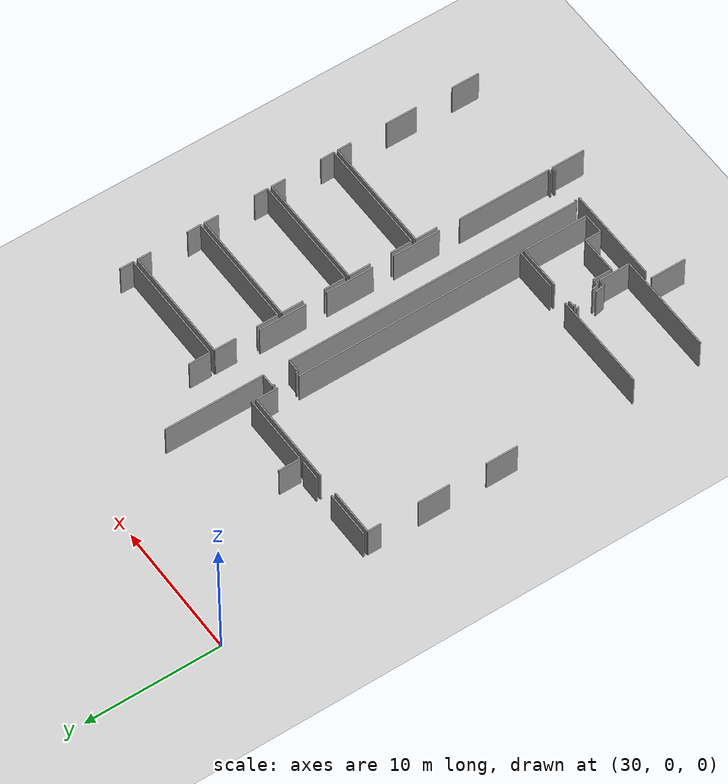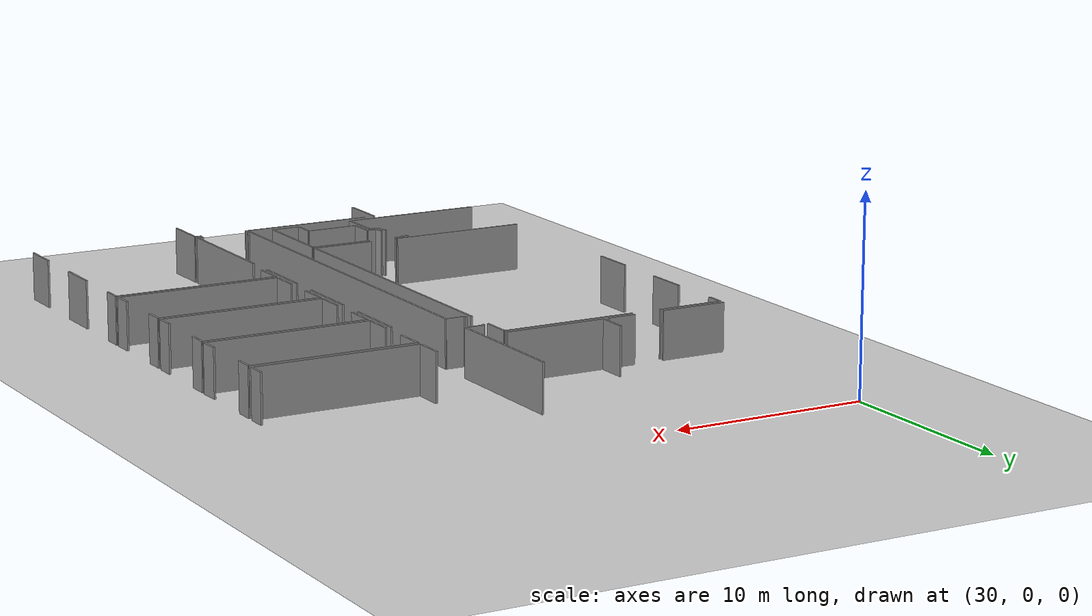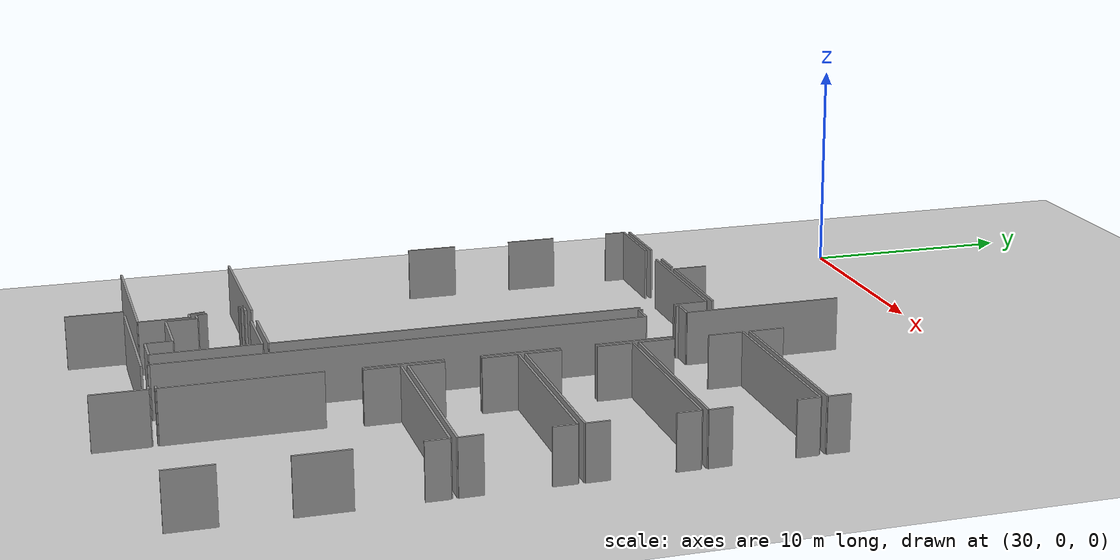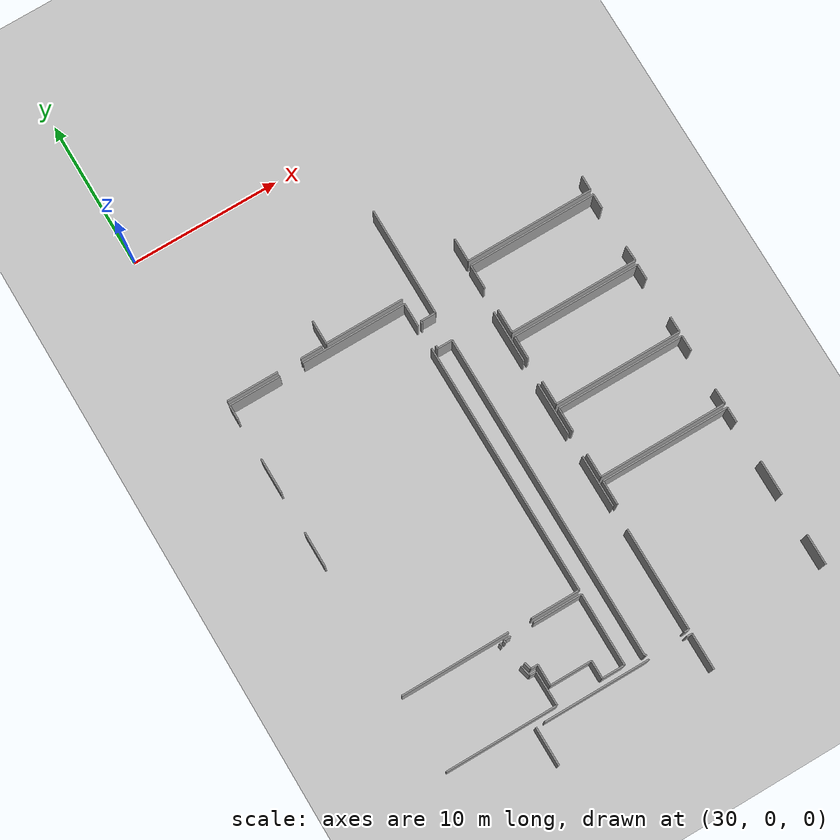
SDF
<sdf version="1.6">
 <world name="default">
  <model name="ground_plane">
   <static>1</static>
   <link name="link">
    <collision name="collision">
     <geometry><plane><normal>0 0 1</normal><size>100 100</size></plane></geometry>
     <surface><friction><ode><mu>100</mu><mu2>50</mu2></ode></friction></surface>
    </collision>
    <visual name="visual">
     <cast_shadows>0</cast_shadows>
     <geometry><plane><normal>0 0 1</normal><size>100 100</size></plane></geometry>
     <material>
      <script><uri>file://media/materials/scripts/gazebo.material</uri><name>Gazebo/Grey</name></script>
     </material>
    </visual>
   </link>
  </model>
  <model name="50025631">
   <static>1</static>
   <link name="Wall_208">
    <collision name="Wall_208_Collision">
     <geometry><box><size>0.318530795755 0.1 2.5</size></box></geometry>
     <pose>0.159265397878 0 1.25 0 0 0</pose>
    </collision>
    <visual name="Wall_208_Visual">
     <pose>0.159265397878 0 1.25 0 0 0</pose>
     <geometry><box><size>0.318530795755 0.1 2.5</size></box></geometry>
     <material>
      <script><uri>file://media/materials/scripts/gazebo.material</uri><name>Gazebo/Grey</name></script>
      <ambient>1 1 1 1</ambient>
     </material>
    </visual>
    <pose>102.865126085 -85.0863703619 0 0 0 3.14159265359</pose>
   </link>
   <link name="Wall_209">
    <collision name="Wall_209_Collision">
     <geometry><box><size>0.131197094105 0.1 2.5</size></box></geometry>
     <pose>0.0655985470525 0 1.25 0 0 0</pose>
    </collision>
    <visual name="Wall_209_Visual">
     <pose>0.0655985470525 0 1.25 0 0 0</pose>
     <geometry><box><size>0.131197094105 0.1 2.5</size></box></geometry>
     <material>
      <script><uri>file://media/materials/scripts/gazebo.material</uri><name>Gazebo/Grey</name></script>
      <ambient>1 1 1 1</ambient>
     </material>
    </visual>
    <pose>99.957072006 -85.0863703619 0 0 0 3.14159265359</pose>
   </link>
   <link name="Wall_210">
    <collision name="Wall_210_Collision">
     <geometry><box><size>22.0127894941 0.1 2.5</size></box></geometry>
     <pose>11.006394747 0 1.25 0 0 0</pose>
    </collision>
    <visual name="Wall_210_Visual">
     <pose>11.006394747 0 1.25 0 0 0</pose>
     <geometry><box><size>22.0127894941 0.1 2.5</size></box></geometry>
     <material>
      <script><uri>file://media/materials/scripts/gazebo.material</uri><name>Gazebo/Grey</name></script>
      <ambient>1 1 1 1</ambient>
     </material>
    </visual>
    <pose>99.8258749119 -85.0863703619 0 0 0 1.57079632679</pose>
   </link>
   <link name="Wall_211">
    <collision name="Wall_211_Collision">
     <geometry><box><size>1.01033192992 0.1 2.5</size></box></geometry>
     <pose>0.505165964959 0 1.25 0 0 0</pose>
    </collision>
    <visual name="Wall_211_Visual">
     <pose>0.505165964959 0 1.25 0 0 0</pose>
     <geometry><box><size>1.01033192992 0.1 2.5</size></box></geometry>
     <material>
      <script><uri>file://media/materials/scripts/gazebo.material</uri><name>Gazebo/Grey</name></script>
      <ambient>1 1 1 1</ambient>
     </material>
    </visual>
    <pose>99.8258749119 -63.0735808678 0 0 0 3.14159265359</pose>
   </link>
   <link name="Wall_212">
    <collision name="Wall_212_Collision">
     <geometry><box><size>0.192794955326 0.1 2.5</size></box></geometry>
     <pose>0.0963974776628 0 1.25 0 0 0</pose>
    </collision>
    <visual name="Wall_212_Visual">
     <pose>0.0963974776628 0 1.25 0 0 0</pose>
     <geometry><box><size>0.192794955326 0.1 2.5</size></box></geometry>
     <material>
      <script><uri>file://media/materials/scripts/gazebo.material</uri><name>Gazebo/Grey</name></script>
      <ambient>1 1 1 1</ambient>
     </material>
    </visual>
    <pose>98.815542982 -63.0735808678 0 0 0 1.57079632679</pose>
   </link>
   <link name="Wall_213">
    <collision name="Wall_213_Collision">
     <geometry><box><size>0.183142506969 0.1 2.5</size></box></geometry>
     <pose>0.0915712534847 0 1.25 0 0 0</pose>
    </collision>
    <visual name="Wall_213_Visual">
     <pose>0.0915712534847 0 1.25 0 0 0</pose>
     <geometry><box><size>0.183142506969 0.1 2.5</size></box></geometry>
     <material>
      <script><uri>file://media/materials/scripts/gazebo.material</uri><name>Gazebo/Grey</name></script>
      <ambient>1 1 1 1</ambient>
     </material>
    </visual>
    <pose>98.815542982 -61.302991624 0 0 0 1.57079632679</pose>
   </link>
   <link name="Wall_214">
    <collision name="Wall_214_Collision">
     <geometry><box><size>1.00956989452 0.1 2.5</size></box></geometry>
     <pose>0.504784947261 0 1.25 0 0 0</pose>
    </collision>
    <visual name="Wall_214_Visual">
     <pose>0.504784947261 0 1.25 0 0 0</pose>
     <geometry><box><size>1.00956989452 0.1 2.5</size></box></geometry>
     <material>
      <script><uri>file://media/materials/scripts/gazebo.material</uri><name>Gazebo/Grey</name></script>
      <ambient>1 1 1 1</ambient>
     </material>
    </visual>
    <pose>98.815542982 -61.119849117 0 0 0 0.0</pose>
   </link>
   <link name="Wall_215">
    <collision name="Wall_215_Collision">
     <geometry><box><size>7.33725781563 0.1 2.5</size></box></geometry>
     <pose>3.66862890781 0 1.25 0 0 0</pose>
    </collision>
    <visual name="Wall_215_Visual">
     <pose>3.66862890781 0 1.25 0 0 0</pose>
     <geometry><box><size>7.33725781563 0.1 2.5</size></box></geometry>
     <material>
      <script><uri>file://media/materials/scripts/gazebo.material</uri><name>Gazebo/Grey</name></script>
      <ambient>1 1 1 1</ambient>
     </material>
    </visual>
    <pose>99.8251128765 -61.119849117 0 0 0 1.57079632679</pose>
   </link>
   <link name="Wall_218">
    <collision name="Wall_218_Collision">
     <geometry><box><size>3.51196713087 0.1 2.5</size></box></geometry>
     <pose>1.75598356544 0 1.25 0 0 0</pose>
    </collision>
    <visual name="Wall_218_Visual">
     <pose>1.75598356544 0 1.25 0 0 0</pose>
     <geometry><box><size>3.51196713087 0.1 2.5</size></box></geometry>
     <material>
      <script><uri>file://media/materials/scripts/gazebo.material</uri><name>Gazebo/Grey</name></script>
      <ambient>1 1 1 1</ambient>
     </material>
    </visual>
    <pose>102.862331955 -62.882691001 0 0 0 -1.57079632679</pose>
   </link>
   <link name="Wall_219">
    <collision name="Wall_219_Collision">
     <geometry><box><size>3.53355813378 0.1 2.5</size></box></geometry>
     <pose>1.76677906689 0 1.25 0 0 0</pose>
    </collision>
    <visual name="Wall_219_Visual">
     <pose>1.76677906689 0 1.25 0 0 0</pose>
     <geometry><box><size>3.53355813378 0.1 2.5</size></box></geometry>
     <material>
      <script><uri>file://media/materials/scripts/gazebo.material</uri><name>Gazebo/Grey</name></script>
      <ambient>1 1 1 1</ambient>
     </material>
    </visual>
    <pose>102.862331955 -67.9826128924 0 0 0 -1.57079632679</pose>
   </link>
   <link name="Wall_220">
    <collision name="Wall_220_Collision">
     <geometry><box><size>3.5063788713 0.1 2.5</size></box></geometry>
     <pose>1.75318943565 0 1.25 0 0 0</pose>
    </collision>
    <visual name="Wall_220_Visual">
     <pose>1.75318943565 0 1.25 0 0 0</pose>
     <geometry><box><size>3.5063788713 0.1 2.5</size></box></geometry>
     <material>
      <script><uri>file://media/materials/scripts/gazebo.material</uri><name>Gazebo/Grey</name></script>
      <ambient>1 1 1 1</ambient>
     </material>
    </visual>
    <pose>102.862331955 -73.0937113029 0 0 0 -1.57079632679</pose>
   </link>
   <link name="Wall_221">
    <collision name="Wall_221_Collision">
     <geometry><box><size>6.91051855844 0.1 2.5</size></box></geometry>
     <pose>3.45525927922 0 1.25 0 0 0</pose>
    </collision>
    <visual name="Wall_221_Visual">
     <pose>3.45525927922 0 1.25 0 0 0</pose>
     <geometry><box><size>6.91051855844 0.1 2.5</size></box></geometry>
     <material>
      <script><uri>file://media/materials/scripts/gazebo.material</uri><name>Gazebo/Grey</name></script>
      <ambient>1 1 1 1</ambient>
     </material>
    </visual>
    <pose>102.862331955 -78.1758523683 0 0 0 -1.57039199681</pose>
   </link>
   <link name="Wall_222">
    <collision name="Wall_222_Collision">
     <geometry><box><size>8.64160840271 0.1 2.5</size></box></geometry>
     <pose>4.32080420136 0 1.25 0 0 0</pose>
    </collision>
    <visual name="Wall_222_Visual">
     <pose>4.32080420136 0 1.25 0 0 0</pose>
     <geometry><box><size>8.64160840271 0.1 2.5</size></box></geometry>
     <material>
      <script><uri>file://media/materials/scripts/gazebo.material</uri><name>Gazebo/Grey</name></script>
      <ambient>1 1 1 1</ambient>
     </material>
    </visual>
    <pose>111.800753145 -59.3900287668 0 0 0 3.14159265359</pose>
   </link>
   <link name="Wall_223">
    <collision name="Wall_223_Collision">
     <geometry><box><size>1.59151092568 0.1 2.5</size></box></geometry>
     <pose>0.795755462841 0 1.25 0 0 0</pose>
    </collision>
    <visual name="Wall_223_Visual">
     <pose>0.795755462841 0 1.25 0 0 0</pose>
     <geometry><box><size>1.59151092568 0.1 2.5</size></box></geometry>
     <material>
      <script><uri>file://media/materials/scripts/gazebo.material</uri><name>Gazebo/Grey</name></script>
      <ambient>1 1 1 1</ambient>
     </material>
    </visual>
    <pose>103.159144742 -59.3900287668 0 0 0 1.57079632679</pose>
   </link>
   <link name="Wall_227">
    <collision name="Wall_227_Collision">
     <geometry><box><size>1.009748021 0.1 2.5</size></box></geometry>
     <pose>0.504874010499 0 1.25 0 0 0</pose>
    </collision>
    <visual name="Wall_227_Visual">
     <pose>0.504874010499 0 1.25 0 0 0</pose>
     <geometry><box><size>1.009748021 0.1 2.5</size></box></geometry>
     <material>
      <script><uri>file://media/materials/scripts/gazebo.material</uri><name>Gazebo/Grey</name></script>
      <ambient>1 1 1 1</ambient>
     </material>
    </visual>
    <pose>111.810913617 -58.3803318664 0 0 0 -1.58085888024</pose>
   </link>
   <link name="Wall_228">
    <collision name="Wall_228_Collision">
     <geometry><box><size>8.68288532002 0.1 2.5</size></box></geometry>
     <pose>4.34144266001 0 1.25 0 0 0</pose>
    </collision>
    <visual name="Wall_228_Visual">
     <pose>4.34144266001 0 1.25 0 0 0</pose>
     <geometry><box><size>8.68288532002 0.1 2.5</size></box></geometry>
     <material>
      <script><uri>file://media/materials/scripts/gazebo.material</uri><name>Gazebo/Grey</name></script>
      <ambient>1 1 1 1</ambient>
     </material>
    </visual>
    <pose>111.835044738 -64.5060804074 0 0 0 3.14159265359</pose>
   </link>
   <link name="Wall_229">
    <collision name="Wall_229_Collision">
     <geometry><box><size>1.6086567221 0.1 2.5</size></box></geometry>
     <pose>0.804328361052 0 1.25 0 0 0</pose>
    </collision>
    <visual name="Wall_229_Visual">
     <pose>0.804328361052 0 1.25 0 0 0</pose>
     <geometry><box><size>1.6086567221 0.1 2.5</size></box></geometry>
     <material>
      <script><uri>file://media/materials/scripts/gazebo.material</uri><name>Gazebo/Grey</name></script>
      <ambient>1 1 1 1</ambient>
     </material>
    </visual>
    <pose>103.152159418 -64.5060804074 0 0 0 1.57079632679</pose>
   </link>
   <link name="Wall_230">
    <collision name="Wall_230_Collision">
     <geometry><box><size>1.60484654512 0.1 2.5</size></box></geometry>
     <pose>0.802423272561 0 1.25 0 0 0</pose>
    </collision>
    <visual name="Wall_230_Visual">
     <pose>0.802423272561 0 1.25 0 0 0</pose>
     <geometry><box><size>1.60484654512 0.1 2.5</size></box></geometry>
     <material>
      <script><uri>file://media/materials/scripts/gazebo.material</uri><name>Gazebo/Grey</name></script>
      <ambient>1 1 1 1</ambient>
     </material>
    </visual>
    <pose>103.152159418 -61.3071828186 0 0 0 1.57079632679</pose>
   </link>
   <link name="Wall_231">
    <collision name="Wall_231_Collision">
     <geometry><box><size>8.64986378617 0.1 2.5</size></box></geometry>
     <pose>4.32493189309 0 1.25 0 0 0</pose>
    </collision>
    <visual name="Wall_231_Visual">
     <pose>4.32493189309 0 1.25 0 0 0</pose>
     <geometry><box><size>8.64986378617 0.1 2.5</size></box></geometry>
     <material>
      <script><uri>file://media/materials/scripts/gazebo.material</uri><name>Gazebo/Grey</name></script>
      <ambient>1 1 1 1</ambient>
     </material>
    </visual>
    <pose>103.152159418 -59.7023362735 0 0 0 0.0</pose>
   </link>
   <link name="Wall_232">
    <collision name="Wall_232_Collision">
     <geometry><box><size>1.00956989452 0.1 2.5</size></box></geometry>
     <pose>0.504784947261 0 1.25 0 0 0</pose>
    </collision>
    <visual name="Wall_232_Visual">
     <pose>0.504784947261 0 1.25 0 0 0</pose>
     <geometry><box><size>1.00956989452 0.1 2.5</size></box></geometry>
     <material>
      <script><uri>file://media/materials/scripts/gazebo.material</uri><name>Gazebo/Grey</name></script>
      <ambient>1 1 1 1</ambient>
     </material>
    </visual>
    <pose>111.802023204 -59.7023362735 0 0 0 -1.57079632679</pose>
   </link>
   <link name="Wall_233">
    <collision name="Wall_233_Collision">
     <geometry><box><size>1.03283196501 0.1 2.5</size></box></geometry>
     <pose>0.516415982507 0 1.25 0 0 0</pose>
    </collision>
    <visual name="Wall_233_Visual">
     <pose>0.516415982507 0 1.25 0 0 0</pose>
     <geometry><box><size>1.03283196501 0.1 2.5</size></box></geometry>
     <material>
      <script><uri>file://media/materials/scripts/gazebo.material</uri><name>Gazebo/Grey</name></script>
      <ambient>1 1 1 1</ambient>
     </material>
    </visual>
    <pose>111.802023204 -63.4737764569 0 0 0 -1.5388190417</pose>
   </link>
   <link name="Wall_234">
    <collision name="Wall_234_Collision">
     <geometry><box><size>8.64897474488 0.1 2.5</size></box></geometry>
     <pose>4.32448737244 0 1.25 0 0 0</pose>
    </collision>
    <visual name="Wall_234_Visual">
     <pose>4.32448737244 0 1.25 0 0 0</pose>
     <geometry><box><size>8.64897474488 0.1 2.5</size></box></geometry>
     <material>
      <script><uri>file://media/materials/scripts/gazebo.material</uri><name>Gazebo/Grey</name></script>
      <ambient>1 1 1 1</ambient>
     </material>
    </visual>
    <pose>111.808373499 -69.6071453519 0 0 0 3.14159265359</pose>
   </link>
   <link name="Wall_235">
    <collision name="Wall_235_Collision">
     <geometry><box><size>1.60484654512 0.1 2.5</size></box></geometry>
     <pose>0.802423272561 0 1.25 0 0 0</pose>
    </collision>
    <visual name="Wall_235_Visual">
     <pose>0.802423272561 0 1.25 0 0 0</pose>
     <geometry><box><size>1.60484654512 0.1 2.5</size></box></geometry>
     <material>
      <script><uri>file://media/materials/scripts/gazebo.material</uri><name>Gazebo/Grey</name></script>
      <ambient>1 1 1 1</ambient>
     </material>
    </visual>
    <pose>103.159398754 -69.6071453519 0 0 0 1.57079632679</pose>
   </link>
   <link name="Wall_236">
    <collision name="Wall_236_Collision">
     <geometry><box><size>1.61335594038 0.1 2.5</size></box></geometry>
     <pose>0.806677970192 0 1.25 0 0 0</pose>
    </collision>
    <visual name="Wall_236_Visual">
     <pose>0.806677970192 0 1.25 0 0 0</pose>
     <geometry><box><size>1.61335594038 0.1 2.5</size></box></geometry>
     <material>
      <script><uri>file://media/materials/scripts/gazebo.material</uri><name>Gazebo/Grey</name></script>
      <ambient>1 1 1 1</ambient>
     </material>
    </visual>
    <pose>103.159398754 -66.3979602853 0 0 0 1.57079632679</pose>
   </link>
   <link name="Wall_237">
    <collision name="Wall_237_Collision">
     <geometry><box><size>8.64643462689 0.1 2.5</size></box></geometry>
     <pose>4.32321731344 0 1.25 0 0 0</pose>
    </collision>
    <visual name="Wall_237_Visual">
     <pose>4.32321731344 0 1.25 0 0 0</pose>
     <geometry><box><size>8.64643462689 0.1 2.5</size></box></geometry>
     <material>
      <script><uri>file://media/materials/scripts/gazebo.material</uri><name>Gazebo/Grey</name></script>
      <ambient>1 1 1 1</ambient>
     </material>
    </visual>
    <pose>103.159398754 -64.7846043449 0 0 0 0.0</pose>
   </link>
   <link name="Wall_238">
    <collision name="Wall_238_Collision">
     <geometry><box><size>1.04475052866 0.1 2.5</size></box></geometry>
     <pose>0.522375264331 0 1.25 0 0 0</pose>
    </collision>
    <visual name="Wall_238_Visual">
     <pose>0.522375264331 0 1.25 0 0 0</pose>
     <geometry><box><size>1.04475052866 0.1 2.5</size></box></geometry>
     <material>
      <script><uri>file://media/materials/scripts/gazebo.material</uri><name>Gazebo/Grey</name></script>
      <ambient>1 1 1 1</ambient>
     </material>
    </visual>
    <pose>111.805833381 -64.7846043449 0 0 0 -1.57079632679</pose>
   </link>
   <link name="Wall_239">
    <collision name="Wall_239_Collision">
     <geometry><box><size>1.03624424667 0.1 2.5</size></box></geometry>
     <pose>0.518122123334 0 1.25 0 0 0</pose>
    </collision>
    <visual name="Wall_239_Visual">
     <pose>0.518122123334 0 1.25 0 0 0</pose>
     <geometry><box><size>1.03624424667 0.1 2.5</size></box></geometry>
     <material>
      <script><uri>file://media/materials/scripts/gazebo.material</uri><name>Gazebo/Grey</name></script>
      <ambient>1 1 1 1</ambient>
     </material>
    </visual>
    <pose>111.805833381 -68.5709042185 0 0 0 -1.56834505091</pose>
   </link>
   <link name="Wall_240">
    <collision name="Wall_240_Collision">
     <geometry><box><size>8.66104030532 0.1 2.5</size></box></geometry>
     <pose>4.33052015266 0 1.25 0 0 0</pose>
    </collision>
    <visual name="Wall_240_Visual">
     <pose>4.33052015266 0 1.25 0 0 0</pose>
     <geometry><box><size>8.66104030532 0.1 2.5</size></box></geometry>
     <material>
      <script><uri>file://media/materials/scripts/gazebo.material</uri><name>Gazebo/Grey</name></script>
      <ambient>1 1 1 1</ambient>
     </material>
    </visual>
    <pose>111.81980403 -74.7107504144 0 0 0 3.14159265359</pose>
   </link>
   <link name="Wall_241">
    <collision name="Wall_241_Collision">
     <geometry><box><size>1.59506709087 0.1 2.5</size></box></geometry>
     <pose>0.797533545433 0 1.25 0 0 0</pose>
    </collision>
    <visual name="Wall_241_Visual">
     <pose>0.797533545433 0 1.25 0 0 0</pose>
     <geometry><box><size>1.59506709087 0.1 2.5</size></box></geometry>
     <material>
      <script><uri>file://media/materials/scripts/gazebo.material</uri><name>Gazebo/Grey</name></script>
      <ambient>1 1 1 1</ambient>
     </material>
    </visual>
    <pose>103.158763725 -74.7107504144 0 0 0 1.57079632679</pose>
   </link>
   <link name="Wall_242">
    <collision name="Wall_242_Collision">
     <geometry><box><size>1.62351641234 0.1 2.5</size></box></geometry>
     <pose>0.811758206169 0 1.25 0 0 0</pose>
    </collision>
    <visual name="Wall_242_Visual">
     <pose>0.811758206169 0 1.25 0 0 0</pose>
     <geometry><box><size>1.62351641234 0.1 2.5</size></box></geometry>
     <material>
      <script><uri>file://media/materials/scripts/gazebo.material</uri><name>Gazebo/Grey</name></script>
      <ambient>1 1 1 1</ambient>
     </material>
    </visual>
    <pose>103.158763725 -71.5190921618 0 0 0 1.57079632679</pose>
   </link>
   <link name="Wall_243">
    <collision name="Wall_243_Collision">
     <geometry><box><size>8.63944930242 0.1 2.5</size></box></geometry>
     <pose>4.31972465121 0 1.25 0 0 0</pose>
    </collision>
    <visual name="Wall_243_Visual">
     <pose>4.31972465121 0 1.25 0 0 0</pose>
     <geometry><box><size>8.63944930242 0.1 2.5</size></box></geometry>
     <material>
      <script><uri>file://media/materials/scripts/gazebo.material</uri><name>Gazebo/Grey</name></script>
      <ambient>1 1 1 1</ambient>
     </material>
    </visual>
    <pose>103.158763725 -69.8955757495 0 0 0 0.0</pose>
   </link>
   <link name="Wall_244">
    <collision name="Wall_244_Collision">
     <geometry><box><size>1.0370031688 0.1 2.5</size></box></geometry>
     <pose>0.518501584399 0 1.25 0 0 0</pose>
    </collision>
    <visual name="Wall_244_Visual">
     <pose>0.518501584399 0 1.25 0 0 0</pose>
     <geometry><box><size>1.0370031688 0.1 2.5</size></box></geometry>
     <material>
      <script><uri>file://media/materials/scripts/gazebo.material</uri><name>Gazebo/Grey</name></script>
      <ambient>1 1 1 1</ambient>
     </material>
    </visual>
    <pose>111.798213027 -69.8955757495 0 0 0 -1.57079632679</pose>
   </link>
   <link name="Wall_245">
    <collision name="Wall_245_Collision">
     <geometry><box><size>1.0379897834 0.1 2.5</size></box></geometry>
     <pose>0.5189948917 0 1.25 0 0 0</pose>
    </collision>
    <visual name="Wall_245_Visual">
     <pose>0.5189948917 0 1.25 0 0 0</pose>
     <geometry><box><size>1.0379897834 0.1 2.5</size></box></geometry>
     <material>
      <script><uri>file://media/materials/scripts/gazebo.material</uri><name>Gazebo/Grey</name></script>
      <ambient>1 1 1 1</ambient>
     </material>
    </visual>
    <pose>111.798213027 -73.6729852102 0 0 0 -1.54999404095</pose>
   </link>
   <link name="Wall_248">
    <collision name="Wall_248_Collision">
     <geometry><box><size>1.63774107307 0.1 2.5</size></box></geometry>
     <pose>0.818870536536 0 1.25 0 0 0</pose>
    </collision>
    <visual name="Wall_248_Visual">
     <pose>0.818870536536 0 1.25 0 0 0</pose>
     <geometry><box><size>1.63774107307 0.1 2.5</size></box></geometry>
     <material>
      <script><uri>file://media/materials/scripts/gazebo.material</uri><name>Gazebo/Grey</name></script>
      <ambient>1 1 1 1</ambient>
     </material>
    </visual>
    <pose>103.133997574 -76.6257453659 0 0 0 1.57079632679</pose>
   </link>
   <link name="Wall_249">
    <collision name="Wall_249_Collision">
     <geometry><box><size>8.6883465737 0.1 2.5</size></box></geometry>
     <pose>4.34417328685 0 1.25 0 0 0</pose>
    </collision>
    <visual name="Wall_249_Visual">
     <pose>4.34417328685 0 1.25 0 0 0</pose>
     <geometry><box><size>8.6883465737 0.1 2.5</size></box></geometry>
     <material>
      <script><uri>file://media/materials/scripts/gazebo.material</uri><name>Gazebo/Grey</name></script>
      <ambient>1 1 1 1</ambient>
     </material>
    </visual>
    <pose>103.133997574 -74.9880042928 0 0 0 0.0</pose>
   </link>
   <link name="Wall_250">
    <collision name="Wall_250_Collision">
     <geometry><box><size>1.03116089742 0.1 2.5</size></box></geometry>
     <pose>0.515580448712 0 1.25 0 0 0</pose>
    </collision>
    <visual name="Wall_250_Visual">
     <pose>0.515580448712 0 1.25 0 0 0</pose>
     <geometry><box><size>1.03116089742 0.1 2.5</size></box></geometry>
     <material>
      <script><uri>file://media/materials/scripts/gazebo.material</uri><name>Gazebo/Grey</name></script>
      <ambient>1 1 1 1</ambient>
     </material>
    </visual>
    <pose>111.822344148 -74.9880042928 0 0 0 -1.57079632679</pose>
   </link>
   <link name="Wall_251">
    <collision name="Wall_251_Collision">
     <geometry><box><size>2.3383056143 0.1 2.5</size></box></geometry>
     <pose>1.16915280715 0 1.25 0 0 0</pose>
    </collision>
    <visual name="Wall_251_Visual">
     <pose>1.16915280715 0 1.25 0 0 0</pose>
     <geometry><box><size>2.3383056143 0.1 2.5</size></box></geometry>
     <material>
      <script><uri>file://media/materials/scripts/gazebo.material</uri><name>Gazebo/Grey</name></script>
      <ambient>1 1 1 1</ambient>
     </material>
    </visual>
    <pose>111.822344148 -78.7563963346 0 0 0 -1.57079632679</pose>
   </link>
   <link name="Wall_252">
    <collision name="Wall_252_Collision">
     <geometry><box><size>2.06968969575 0.1 2.5</size></box></geometry>
     <pose>1.03484484788 0 1.25 0 0 0</pose>
    </collision>
    <visual name="Wall_252_Visual">
     <pose>1.03484484788 0 1.25 0 0 0</pose>
     <geometry><box><size>2.06968969575 0.1 2.5</size></box></geometry>
     <material>
      <script><uri>file://media/materials/scripts/gazebo.material</uri><name>Gazebo/Grey</name></script>
      <ambient>1 1 1 1</ambient>
     </material>
    </visual>
    <pose>111.822344148 -83.8838785062 0 0 0 -1.57202362122</pose>
   </link>
   <link name="Wall_253">
    <collision name="Wall_253_Collision">
     <geometry><box><size>3.29288195437 0.1 2.5</size></box></geometry>
     <pose>1.64644097718 0 1.25 0 0 0</pose>
    </collision>
    <visual name="Wall_253_Visual">
     <pose>1.64644097718 0 1.25 0 0 0</pose>
     <geometry><box><size>3.29288195437 0.1 2.5</size></box></geometry>
     <material>
      <script><uri>file://media/materials/scripts/gazebo.material</uri><name>Gazebo/Grey</name></script>
      <ambient>1 1 1 1</ambient>
     </material>
    </visual>
    <pose>98.5434963454 -79.814101465 0 0 0 3.14159265359</pose>
   </link>
   <link name="Wall_254">
    <collision name="Wall_254_Collision">
     <geometry><box><size>7.29318676853 0.1 2.5</size></box></geometry>
     <pose>3.64659338426 0 1.25 0 0 0</pose>
    </collision>
    <visual name="Wall_254_Visual">
     <pose>3.64659338426 0 1.25 0 0 0</pose>
     <geometry><box><size>7.29318676853 0.1 2.5</size></box></geometry>
     <material>
      <script><uri>file://media/materials/scripts/gazebo.material</uri><name>Gazebo/Grey</name></script>
      <ambient>1 1 1 1</ambient>
     </material>
    </visual>
    <pose>93.6748521969 -79.814101465 0 0 0 3.14159265359</pose>
   </link>
   <link name="Wall_257">
    <collision name="Wall_257_Collision">
     <geometry><box><size>2.34541794466 0.1 2.5</size></box></geometry>
     <pose>1.17270897233 0 1.25 0 0 0</pose>
    </collision>
    <visual name="Wall_257_Visual">
     <pose>1.17270897233 0 1.25 0 0 0</pose>
     <geometry><box><size>2.34541794466 0.1 2.5</size></box></geometry>
     <material>
      <script><uri>file://media/materials/scripts/gazebo.material</uri><name>Gazebo/Grey</name></script>
      <ambient>1 1 1 1</ambient>
     </material>
    </visual>
    <pose>86.3816654284 -70.9388022074 0 0 0 1.57079632679</pose>
   </link>
   <link name="Wall_258">
    <collision name="Wall_258_Collision">
     <geometry><box><size>2.35202225143 0.1 2.5</size></box></geometry>
     <pose>1.17601112572 0 1.25 0 0 0</pose>
    </collision>
    <visual name="Wall_258_Visual">
     <pose>1.17601112572 0 1.25 0 0 0</pose>
     <geometry><box><size>2.35202225143 0.1 2.5</size></box></geometry>
     <material>
      <script><uri>file://media/materials/scripts/gazebo.material</uri><name>Gazebo/Grey</name></script>
      <ambient>1 1 1 1</ambient>
     </material>
    </visual>
    <pose>86.3816654284 -65.8209724842 0 0 0 1.57079632679</pose>
   </link>
   <link name="Wall_259">
    <collision name="Wall_259_Collision">
     <geometry><box><size>1.00156852286 0.1 2.5</size></box></geometry>
     <pose>0.500784261429 0 1.25 0 0 0</pose>
    </collision>
    <visual name="Wall_259_Visual">
     <pose>0.500784261429 0 1.25 0 0 0</pose>
     <geometry><box><size>1.00156852286 0.1 2.5</size></box></geometry>
     <material>
      <script><uri>file://media/materials/scripts/gazebo.material</uri><name>Gazebo/Grey</name></script>
      <ambient>1 1 1 1</ambient>
     </material>
    </visual>
    <pose>86.3816654284 -60.703142761 0 0 0 1.57079632679</pose>
   </link>
   <link name="Wall_260">
    <collision name="Wall_260_Collision">
     <geometry><box><size>3.46738806018 0.1 2.5</size></box></geometry>
     <pose>1.73369403009 0 1.25 0 0 0</pose>
    </collision>
    <visual name="Wall_260_Visual">
     <pose>1.73369403009 0 1.25 0 0 0</pose>
     <geometry><box><size>3.46738806018 0.1 2.5</size></box></geometry>
     <material>
      <script><uri>file://media/materials/scripts/gazebo.material</uri><name>Gazebo/Grey</name></script>
      <ambient>1 1 1 1</ambient>
     </material>
    </visual>
    <pose>86.3816654284 -59.7015742381 0 0 0 0.0</pose>
   </link>
   <link name="Wall_261">
    <collision name="Wall_261_Collision">
     <geometry><box><size>7.07473662152 0.1 2.5</size></box></geometry>
     <pose>3.53736831076 0 1.25 0 0 0</pose>
    </collision>
    <visual name="Wall_261_Visual">
     <pose>3.53736831076 0 1.25 0 0 0</pose>
     <geometry><box><size>7.07473662152 0.1 2.5</size></box></geometry>
     <material>
      <script><uri>file://media/materials/scripts/gazebo.material</uri><name>Gazebo/Grey</name></script>
      <ambient>1 1 1 1</ambient>
     </material>
    </visual>
    <pose>91.4358651959 -59.7015742381 0 0 0 0.0</pose>
   </link>
   <link name="Wall_262">
    <collision name="Wall_262_Collision">
     <geometry><box><size>1.58858979 0.1 2.5</size></box></geometry>
     <pose>0.794294894998 0 1.25 0 0 0</pose>
    </collision>
    <visual name="Wall_262_Visual">
     <pose>0.794294894998 0 1.25 0 0 0</pose>
     <geometry><box><size>1.58858979 0.1 2.5</size></box></geometry>
     <material>
      <script><uri>file://media/materials/scripts/gazebo.material</uri><name>Gazebo/Grey</name></script>
      <ambient>1 1 1 1</ambient>
     </material>
    </visual>
    <pose>98.5106018175 -59.7015742381 0 0 0 -1.57079632679</pose>
   </link>
   <link name="Wall_263">
    <collision name="Wall_263_Collision">
     <geometry><box><size>16.924330101 0.1 2.5</size></box></geometry>
     <pose>8.46216505048 0 1.25 0 0 0</pose>
    </collision>
    <visual name="Wall_263_Visual">
     <pose>8.46216505048 0 1.25 0 0 0</pose>
     <geometry><box><size>16.924330101 0.1 2.5</size></box></geometry>
     <material>
      <script><uri>file://media/materials/scripts/gazebo.material</uri><name>Gazebo/Grey</name></script>
      <ambient>1 1 1 1</ambient>
     </material>
    </visual>
    <pose>98.5106018175 -62.8898033314 0 0 0 -1.56885270194</pose>
   </link>
   <link name="Wall_264">
    <collision name="Wall_264_Collision">
     <geometry><box><size>5.31240276111 0.1 2.5</size></box></geometry>
     <pose>2.65620138055 0 1.25 0 0 0</pose>
    </collision>
    <visual name="Wall_264_Visual">
     <pose>2.65620138055 0 1.25 0 0 0</pose>
     <geometry><box><size>5.31240276111 0.1 2.5</size></box></geometry>
     <material>
      <script><uri>file://media/materials/scripts/gazebo.material</uri><name>Gazebo/Grey</name></script>
      <ambient>1 1 1 1</ambient>
     </material>
    </visual>
    <pose>98.5493386168 -59.3991731916 0 0 0 3.14159265359</pose>
   </link>
   <link name="Wall_265">
    <collision name="Wall_265_Collision">
     <geometry><box><size>1.60281445073 0.1 2.5</size></box></geometry>
     <pose>0.801407225366 0 1.25 0 0 0</pose>
    </collision>
    <visual name="Wall_265_Visual">
     <pose>0.801407225366 0 1.25 0 0 0</pose>
     <geometry><box><size>1.60281445073 0.1 2.5</size></box></geometry>
     <material>
      <script><uri>file://media/materials/scripts/gazebo.material</uri><name>Gazebo/Grey</name></script>
      <ambient>1 1 1 1</ambient>
     </material>
    </visual>
    <pose>93.2369358557 -59.3991731916 0 0 0 1.57079632679</pose>
   </link>
   <link name="Wall_277">
    <collision name="Wall_277_Collision">
     <geometry><box><size>1.4780946575 0.1 2.5</size></box></geometry>
     <pose>0.739047328748 0 1.25 0 0 0</pose>
    </collision>
    <visual name="Wall_277_Visual">
     <pose>0.739047328748 0 1.25 0 0 0</pose>
     <geometry><box><size>1.4780946575 0.1 2.5</size></box></geometry>
     <material>
      <script><uri>file://media/materials/scripts/gazebo.material</uri><name>Gazebo/Grey</name></script>
      <ambient>1 1 1 1</ambient>
     </material>
    </visual>
    <pose>92.9302166086 -59.417589047 0 0 0 3.14159265359</pose>
   </link>
   <link name="Wall_278">
    <collision name="Wall_278_Collision">
     <geometry><box><size>3.48072367961 0.1 2.5</size></box></geometry>
     <pose>1.74036183981 0 1.25 0 0 0</pose>
    </collision>
    <visual name="Wall_278_Visual">
     <pose>1.74036183981 0 1.25 0 0 0</pose>
     <geometry><box><size>3.48072367961 0.1 2.5</size></box></geometry>
     <material>
      <script><uri>file://media/materials/scripts/gazebo.material</uri><name>Gazebo/Grey</name></script>
      <ambient>1 1 1 1</ambient>
     </material>
    </visual>
    <pose>89.8566738425 -59.417589047 0 0 0 3.14159265359</pose>
   </link>
   <link name="Wall_284">
    <collision name="Wall_284_Collision">
     <geometry><box><size>1.53575533584 0.1 2.5</size></box></geometry>
     <pose>0.767877667918 0 1.25 0 0 0</pose>
    </collision>
    <visual name="Wall_284_Visual">
     <pose>0.767877667918 0 1.25 0 0 0</pose>
     <geometry><box><size>1.53575533584 0.1 2.5</size></box></geometry>
     <material>
      <script><uri>file://media/materials/scripts/gazebo.material</uri><name>Gazebo/Grey</name></script>
      <ambient>1 1 1 1</ambient>
     </material>
    </visual>
    <pose>98.5243184546 -84.9316771764 0 0 0 3.14159265359</pose>
   </link>
   <link name="Wall_285">
    <collision name="Wall_285_Collision">
     <geometry><box><size>1.20084077905 0.1 2.5</size></box></geometry>
     <pose>0.600420389527 0 1.25 0 0 0</pose>
    </collision>
    <visual name="Wall_285_Visual">
     <pose>0.600420389527 0 1.25 0 0 0</pose>
     <geometry><box><size>1.20084077905 0.1 2.5</size></box></geometry>
     <material>
      <script><uri>file://media/materials/scripts/gazebo.material</uri><name>Gazebo/Grey</name></script>
      <ambient>1 1 1 1</ambient>
     </material>
    </visual>
    <pose>96.9885631188 -84.9316771764 0 0 0 1.57079632679</pose>
   </link>
   <link name="Wall_286">
    <collision name="Wall_286_Collision">
     <geometry><box><size>2.8218170734 0.1 2.5</size></box></geometry>
     <pose>1.4109085367 0 1.25 0 0 0</pose>
    </collision>
    <visual name="Wall_286_Visual">
     <pose>1.4109085367 0 1.25 0 0 0</pose>
     <geometry><box><size>2.8218170734 0.1 2.5</size></box></geometry>
     <material>
      <script><uri>file://media/materials/scripts/gazebo.material</uri><name>Gazebo/Grey</name></script>
      <ambient>1 1 1 1</ambient>
     </material>
    </visual>
    <pose>96.9885631188 -83.7308363974 0 0 0 3.14159265359</pose>
   </link>
   <link name="Wall_287">
    <collision name="Wall_287_Collision">
     <geometry><box><size>1.40887644231 0.1 2.5</size></box></geometry>
     <pose>0.704438221155 0 1.25 0 0 0</pose>
    </collision>
    <visual name="Wall_287_Visual">
     <pose>0.704438221155 0 1.25 0 0 0</pose>
     <geometry><box><size>1.40887644231 0.1 2.5</size></box></geometry>
     <material>
      <script><uri>file://media/materials/scripts/gazebo.material</uri><name>Gazebo/Grey</name></script>
      <ambient>1 1 1 1</ambient>
     </material>
    </visual>
    <pose>94.1667460454 -83.7308363974 0 0 0 1.57079632679</pose>
   </link>
   <link name="Wall_288">
    <collision name="Wall_288_Collision">
     <geometry><box><size>0.493036901564 0.1 2.5</size></box></geometry>
     <pose>0.246518450782 0 1.25 0 0 0</pose>
    </collision>
    <visual name="Wall_288_Visual">
     <pose>0.246518450782 0 1.25 0 0 0</pose>
     <geometry><box><size>0.493036901564 0.1 2.5</size></box></geometry>
     <material>
      <script><uri>file://media/materials/scripts/gazebo.material</uri><name>Gazebo/Grey</name></script>
      <ambient>1 1 1 1</ambient>
     </material>
    </visual>
    <pose>94.1667460454 -82.321959955 0 0 0 3.14159265359</pose>
   </link>
   <link name="Wall_289">
    <collision name="Wall_289_Collision">
     <geometry><box><size>0.510681435318 0.1 2.5</size></box></geometry>
     <pose>0.255340717659 0 1.25 0 0 0</pose>
    </collision>
    <visual name="Wall_289_Visual">
     <pose>0.255340717659 0 1.25 0 0 0</pose>
     <geometry><box><size>0.510681435318 0.1 2.5</size></box></geometry>
     <material>
      <script><uri>file://media/materials/scripts/gazebo.material</uri><name>Gazebo/Grey</name></script>
      <ambient>1 1 1 1</ambient>
     </material>
    </visual>
    <pose>93.6737091438 -82.321959955 0 0 0 1.79194699183</pose>
   </link>
   <link name="Wall_290">
    <collision name="Wall_290_Collision">
     <geometry><box><size>0.17882759877 0.1 2.5</size></box></geometry>
     <pose>0.0894137993851 0 1.25 0 0 0</pose>
    </collision>
    <visual name="Wall_290_Visual">
     <pose>0.0894137993851 0 1.25 0 0 0</pose>
     <geometry><box><size>0.17882759877 0.1 2.5</size></box></geometry>
     <material>
      <script><uri>file://media/materials/scripts/gazebo.material</uri><name>Gazebo/Grey</name></script>
      <ambient>1 1 1 1</ambient>
     </material>
    </visual>
    <pose>93.2204250887 -80.2592571425 0 0 0 1.75579525189</pose>
   </link>
   <link name="Wall_291">
    <collision name="Wall_291_Collision">
     <geometry><box><size>0.466746680383 0.1 2.5</size></box></geometry>
     <pose>0.233373340192 0 1.25 0 0 0</pose>
    </collision>
    <visual name="Wall_291_Visual">
     <pose>0.233373340192 0 1.25 0 0 0</pose>
     <geometry><box><size>0.466746680383 0.1 2.5</size></box></geometry>
     <material>
      <script><uri>file://media/materials/scripts/gazebo.material</uri><name>Gazebo/Grey</name></script>
      <ambient>1 1 1 1</ambient>
     </material>
    </visual>
    <pose>93.1875305608 -80.0834809777 0 0 0 0.0</pose>
   </link>
   <link name="Wall_292">
    <collision name="Wall_292_Collision">
     <geometry><box><size>3.29440602516 0.1 2.5</size></box></geometry>
     <pose>1.64720301258 0 1.25 0 0 0</pose>
    </collision>
    <visual name="Wall_292_Visual">
     <pose>1.64720301258 0 1.25 0 0 0</pose>
     <geometry><box><size>3.29440602516 0.1 2.5</size></box></geometry>
     <material>
      <script><uri>file://media/materials/scripts/gazebo.material</uri><name>Gazebo/Grey</name></script>
      <ambient>1 1 1 1</ambient>
     </material>
    </visual>
    <pose>95.2356276949 -80.0834809777 0 0 0 0.0</pose>
   </link>
   <link name="Wall_293">
    <collision name="Wall_293_Collision">
     <geometry><box><size>4.84819956741 0.1 2.5</size></box></geometry>
     <pose>2.42409978371 0 1.25 0 0 0</pose>
    </collision>
    <visual name="Wall_293_Visual">
     <pose>2.42409978371 0 1.25 0 0 0</pose>
     <geometry><box><size>4.84819956741 0.1 2.5</size></box></geometry>
     <material>
      <script><uri>file://media/materials/scripts/gazebo.material</uri><name>Gazebo/Grey</name></script>
      <ambient>1 1 1 1</ambient>
     </material>
    </visual>
    <pose>98.5300337201 -80.0834809777 0 0 0 -1.57197516993</pose>
   </link>
   <link name="Wall_294">
    <collision name="Wall_294_Collision">
     <geometry><box><size>7.53754611902 0.1 2.5</size></box></geometry>
     <pose>3.76877305951 0 1.25 0 0 0</pose>
    </collision>
    <visual name="Wall_294_Visual">
     <pose>3.76877305951 0 1.25 0 0 0</pose>
     <geometry><box><size>7.53754611902 0.1 2.5</size></box></geometry>
     <material>
      <script><uri>file://media/materials/scripts/gazebo.material</uri><name>Gazebo/Grey</name></script>
      <ambient>1 1 1 1</ambient>
     </material>
    </visual>
    <pose>93.9081620341 -84.9218977221 0 0 0 3.14159265359</pose>
   </link>
   <link name="Wall_297">
    <collision name="Wall_297_Collision">
     <geometry><box><size>0.2237498295 0.1 2.5</size></box></geometry>
     <pose>0.11187491475 0 1.25 0 0 0</pose>
    </collision>
    <visual name="Wall_297_Visual">
     <pose>0.11187491475 0 1.25 0 0 0</pose>
     <geometry><box><size>0.2237498295 0.1 2.5</size></box></geometry>
     <material>
      <script><uri>file://media/materials/scripts/gazebo.material</uri><name>Gazebo/Grey</name></script>
      <ambient>1 1 1 1</ambient>
     </material>
    </visual>
    <pose>92.9110387177 -80.0974516266 0 0 0 -1.37774227368</pose>
   </link>
   <link name="Wall_298">
    <collision name="Wall_298_Collision">
     <geometry><box><size>0.749152089568 0.1 2.5</size></box></geometry>
     <pose>0.374576044784 0 1.25 0 0 0</pose>
    </collision>
    <visual name="Wall_298_Visual">
     <pose>0.374576044784 0 1.25 0 0 0</pose>
     <geometry><box><size>0.749152089568 0.1 2.5</size></box></geometry>
     <material>
      <script><uri>file://media/materials/scripts/gazebo.material</uri><name>Gazebo/Grey</name></script>
      <ambient>1 1 1 1</ambient>
     </material>
    </visual>
    <pose>93.2909133629 -81.8864567259 0 0 0 -1.36575362249</pose>
   </link>
   <link name="Wall_299">
    <collision name="Wall_299_Collision">
     <geometry><box><size>0.442869571292 0.1 2.5</size></box></geometry>
     <pose>0.221434785646 0 1.25 0 0 0</pose>
    </collision>
    <visual name="Wall_299_Visual">
     <pose>0.221434785646 0 1.25 0 0 0</pose>
     <geometry><box><size>0.442869571292 0.1 2.5</size></box></geometry>
     <material>
      <script><uri>file://media/materials/scripts/gazebo.material</uri><name>Gazebo/Grey</name></script>
      <ambient>1 1 1 1</ambient>
     </material>
    </visual>
    <pose>93.4434474481 -82.6199157951 0 0 0 0.0</pose>
   </link>
   <link name="Wall_300">
    <collision name="Wall_300_Collision">
     <geometry><box><size>2.30208557556 0.1 2.5</size></box></geometry>
     <pose>1.15104278778 0 1.25 0 0 0</pose>
    </collision>
    <visual name="Wall_300_Visual">
     <pose>1.15104278778 0 1.25 0 0 0</pose>
     <geometry><box><size>2.30208557556 0.1 2.5</size></box></geometry>
     <material>
      <script><uri>file://media/materials/scripts/gazebo.material</uri><name>Gazebo/Grey</name></script>
      <ambient>1 1 1 1</ambient>
     </material>
    </visual>
    <pose>93.8863170194 -82.6199157951 0 0 0 -1.56130695647</pose>
   </link>
   <link name="Wall_306">
    <collision name="Wall_306_Collision">
     <geometry><box><size>2.59384148394 0.1 2.5</size></box></geometry>
     <pose>1.29692074197 0 1.25 0 0 0</pose>
    </collision>
    <visual name="Wall_306_Visual">
     <pose>1.29692074197 0 1.25 0 0 0</pose>
     <geometry><box><size>2.59384148394 0.1 2.5</size></box></geometry>
     <material>
      <script><uri>file://media/materials/scripts/gazebo.material</uri><name>Gazebo/Grey</name></script>
      <ambient>1 1 1 1</ambient>
     </material>
    </visual>
    <pose>92.1860890438 -85.3902954792 0 0 0 -1.57079632679</pose>
   </link>
   <link name="Wall_309">
    <collision name="Wall_309_Collision">
     <geometry><box><size>7.15932255053 0.1 2.5</size></box></geometry>
     <pose>3.57966127527 0 1.25 0 0 0</pose>
    </collision>
    <visual name="Wall_309_Visual">
     <pose>3.57966127527 0 1.25 0 0 0</pose>
     <geometry><box><size>7.15932255053 0.1 2.5</size></box></geometry>
     <material>
      <script><uri>file://media/materials/scripts/gazebo.material</uri><name>Gazebo/Grey</name></script>
      <ambient>1 1 1 1</ambient>
     </material>
    </visual>
    <pose>92.7873349717 -85.3869933258 0 0 0 0.0</pose>
   </link>
   <link name="Wall_310">
    <collision name="Wall_310_Collision">
     <geometry><box><size>0.353457418097 0.1 2.5</size></box></geometry>
     <pose>0.176728709049 0 1.25 0 0 0</pose>
    </collision>
    <visual name="Wall_310_Visual">
     <pose>0.176728709049 0 1.25 0 0 0</pose>
     <geometry><box><size>0.353457418097 0.1 2.5</size></box></geometry>
     <material>
      <script><uri>file://media/materials/scripts/gazebo.material</uri><name>Gazebo/Grey</name></script>
      <ambient>1 1 1 1</ambient>
     </material>
    </visual>
    <pose>102.531862605 -85.3869933258 0 0 0 0.0</pose>
   </link>
   <link name="Wall_311">
    <collision name="Wall_311_Collision">
     <geometry><box><size>2.44054536333 0.1 2.5</size></box></geometry>
     <pose>1.22027268167 0 1.25 0 0 0</pose>
    </collision>
    <visual name="Wall_311_Visual">
     <pose>1.22027268167 0 1.25 0 0 0</pose>
     <geometry><box><size>2.44054536333 0.1 2.5</size></box></geometry>
     <material>
      <script><uri>file://media/materials/scripts/gazebo.material</uri><name>Gazebo/Grey</name></script>
      <ambient>1 1 1 1</ambient>
     </material>
    </visual>
    <pose>102.885320023 -85.3869933258 0 0 0 -1.57079632679</pose>
   </link>
   <pose>-55.9 48.5496043766 0 0 0 0</pose>
  </model>
 </world>
</sdf>
